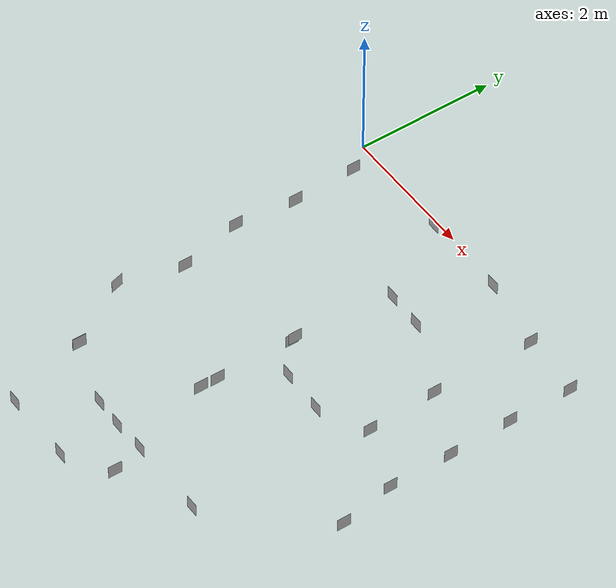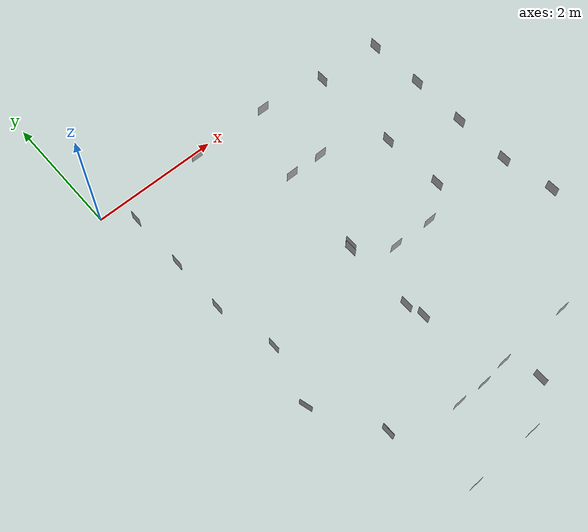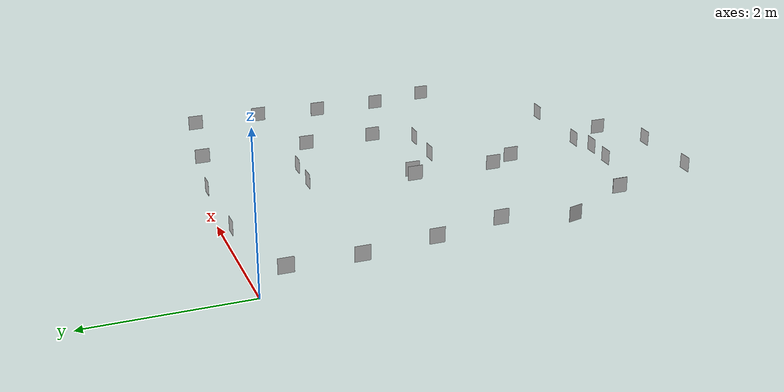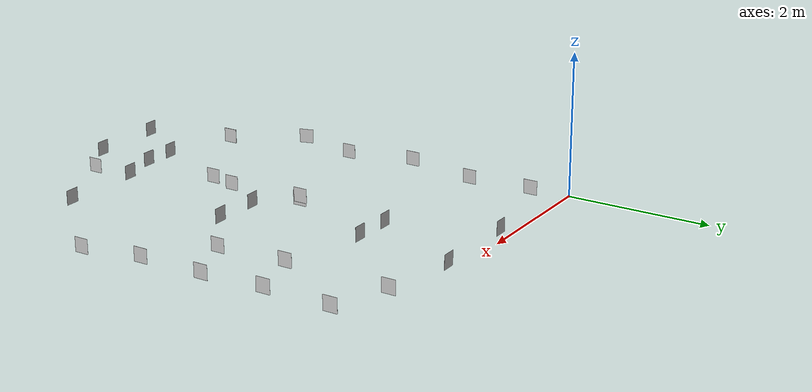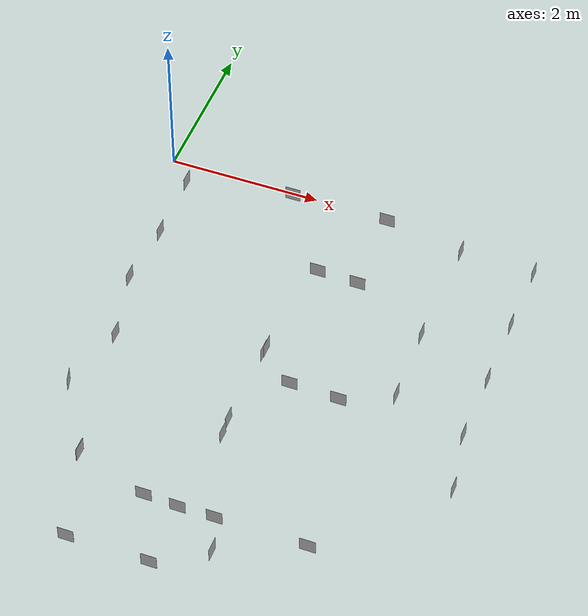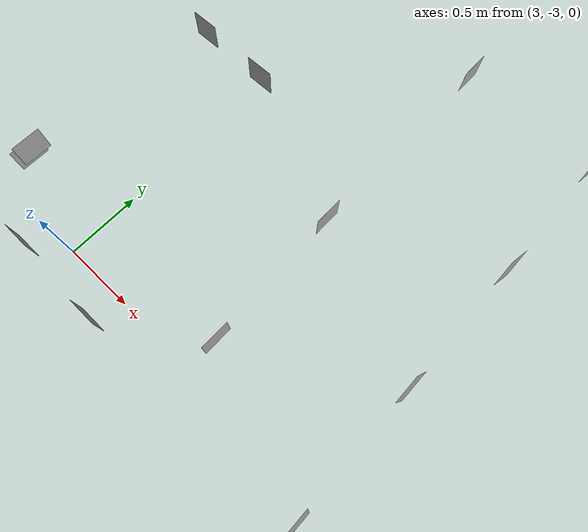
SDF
<sdf version="1.6">
 <world name="default">
  <model name="ground">
   <static>1</static>
   <link name="ground">
    <collision name="ground_coll">
     <geometry><box><size>100 100 0.01</size></box></geometry>
     <surface><contact><ode><kp>1e15</kp><kd>1e15</kd></ode></contact></surface>
    </collision>
   </link>
  </model>
  <physics type="ode">
   <real_time_update_rate>1000.0</real_time_update_rate>
   <max_step_size>0.001</max_step_size>
   <real_time_factor>1</real_time_factor>
   <ode>
    <solver>
     <type>quick</type>
     <iters>150</iters>
     <precon_iters>0</precon_iters>
     <sor>1.400000</sor>
     <use_dynamic_moi_rescaling>1</use_dynamic_moi_rescaling>
    </solver>
    <constraints>
     <cfm>0.00001</cfm>
     <erp>0.2</erp>
     <contact_max_correcting_vel>2000.000000</contact_max_correcting_vel>
     <contact_surface_layer>0.01000</contact_surface_layer>
    </constraints>
   </ode>
  </physics>
  <model name="tag0">
   <static>1</static>
   <link name="link">
    <inertial>
     <mass>10</mass>
     <inertia><ixx>1</ixx><ixy>1</ixy><ixz>1</ixz><iyy>1</iyy><iyz>1</iyz><izz>1</izz></inertia>
    </inertial>
    <visual name="visual">
     <geometry><mesh><uri>model://apriltag/tag00.dae</uri><scale>0.2 0.2 0.2</scale></mesh></geometry>
    </visual>
   </link>
   <pose frame="tank">4.054 -0.288 0.1278 0 0 3.1415</pose>
  </model>
  <model name="tag1">
   <static>1</static>
   <link name="link">
    <inertial>
     <mass>10</mass>
     <inertia><ixx>1</ixx><ixy>1</ixy><ixz>1</ixz><iyy>1</iyy><iyz>1</iyz><izz>1</izz></inertia>
    </inertial>
    <visual name="visual">
     <geometry><mesh><uri>model://apriltag/tag01.dae</uri><scale>0.2 0.2 0.2</scale></mesh></geometry>
    </visual>
   </link>
   <pose frame="tank">5.051 -1.3464 0.26 0 0 3.1415</pose>
  </model>
  <model name="tag2">
   <static>1</static>
   <link name="link">
    <inertial>
     <mass>10</mass>
     <inertia><ixx>1</ixx><ixy>1</ixy><ixz>1</ixz><iyy>1</iyy><iyz>1</iyz><izz>1</izz></inertia>
    </inertial>
    <visual name="visual">
     <geometry><mesh><uri>model://apriltag/tag02.dae</uri><scale>0.2 0.2 0.2</scale></mesh></geometry>
    </visual>
   </link>
   <pose frame="tank">4.0748 -2.769 0.1068 0 0 0</pose>
  </model>
  <model name="tag3">
   <static>1</static>
   <link name="link">
    <inertial>
     <mass>10</mass>
     <inertia><ixx>1</ixx><ixy>1</ixy><ixz>1</ixz><iyy>1</iyy><iyz>1</iyz><izz>1</izz></inertia>
    </inertial>
    <visual name="visual">
     <geometry><mesh><uri>model://apriltag/tag03.dae</uri><scale>0.2 0.2 0.2</scale></mesh></geometry>
    </visual>
   </link>
   <pose frame="tank">0.38 -1.333 0.146 0 0 0</pose>
  </model>
  <model name="tag4">
   <static>1</static>
   <link name="link">
    <inertial>
     <mass>10</mass>
     <inertia><ixx>1</ixx><ixy>1</ixy><ixz>1</ixz><iyy>1</iyy><iyz>1</iyz><izz>1</izz></inertia>
    </inertial>
    <visual name="visual">
     <geometry><mesh><uri>model://apriltag/tag04.dae</uri><scale>0.2 0.2 0.2</scale></mesh></geometry>
    </visual>
   </link>
   <pose frame="tank">0.35 -4.063 0.227 0 0 0.2744</pose>
  </model>
  <model name="tag5">
   <static>1</static>
   <link name="link">
    <inertial>
     <mass>10</mass>
     <inertia><ixx>1</ixx><ixy>1</ixy><ixz>1</ixz><iyy>1</iyy><iyz>1</iyz><izz>1</izz></inertia>
    </inertial>
    <visual name="visual">
     <geometry><mesh><uri>model://apriltag/tag05.dae</uri><scale>0.2 0.2 0.2</scale></mesh></geometry>
    </visual>
   </link>
   <pose frame="tank">0.914111 -5 0.227 0 0 0</pose>
  </model>
  <model name="tag6">
   <static>1</static>
   <link name="link">
    <inertial>
     <mass>10</mass>
     <inertia><ixx>1</ixx><ixy>1</ixy><ixz>1</ixz><iyy>1</iyy><iyz>1</iyz><izz>1</izz></inertia>
    </inertial>
    <visual name="visual">
     <geometry><mesh><uri>model://apriltag/tag06.dae</uri><scale>0.2 0.2 0.2</scale></mesh></geometry>
    </visual>
   </link>
   <pose frame="tank">2.92 -5.781 0.227 0 0 3.1415</pose>
  </model>
  <model name="tag7">
   <static>1</static>
   <link name="link">
    <inertial>
     <mass>10</mass>
     <inertia><ixx>1</ixx><ixy>1</ixy><ixz>1</ixz><iyy>1</iyy><iyz>1</iyz><izz>1</izz></inertia>
    </inertial>
    <visual name="visual">
     <geometry><mesh><uri>model://apriltag/tag07.dae</uri><scale>0.2 0.2 0.2</scale></mesh></geometry>
    </visual>
   </link>
   <pose frame="tank">1.2787 -6.189 0.227 0 0 1.5708</pose>
  </model>
  <model name="tag8">
   <static>1</static>
   <link name="link">
    <inertial>
     <mass>10</mass>
     <inertia><ixx>1</ixx><ixy>1</ixy><ixz>1</ixz><iyy>1</iyy><iyz>1</iyz><izz>1</izz></inertia>
    </inertial>
    <visual name="visual">
     <geometry><mesh><uri>model://apriltag/tag08.dae</uri><scale>0.2 0.2 0.2</scale></mesh></geometry>
    </visual>
   </link>
   <pose frame="tank">2.752 -5.31 0.177 0 0 1.5708</pose>
  </model>
  <model name="tag9">
   <static>1</static>
   <link name="link">
    <inertial>
     <mass>10</mass>
     <inertia><ixx>1</ixx><ixy>1</ixy><ixz>1</ixz><iyy>1</iyy><iyz>1</iyz><izz>1</izz></inertia>
    </inertial>
    <visual name="visual">
     <geometry><mesh><uri>model://apriltag/tag09.dae</uri><scale>0.2 0.2 0.2</scale></mesh></geometry>
    </visual>
   </link>
   <pose frame="tank">3.0518 -1.3468 0.227 0 0 -1.5708</pose>
  </model>
  <model name="tag10">
   <static>1</static>
   <link name="link">
    <inertial>
     <mass>10</mass>
     <inertia><ixx>1</ixx><ixy>1</ixy><ixz>1</ixz><iyy>1</iyy><iyz>1</iyz><izz>1</izz></inertia>
    </inertial>
    <visual name="visual">
     <geometry><mesh><uri>model://apriltag/tag10.dae</uri><scale>0.2 0.2 0.2</scale></mesh></geometry>
    </visual>
   </link>
   <pose frame="tank">2.3541 -2.7565 0.171 0 0 3.1415</pose>
  </model>
  <model name="tag11">
   <static>1</static>
   <link name="link">
    <inertial>
     <mass>10</mass>
     <inertia><ixx>1</ixx><ixy>1</ixy><ixz>1</ixz><iyy>1</iyy><iyz>1</iyz><izz>1</izz></inertia>
    </inertial>
    <visual name="visual">
     <geometry><mesh><uri>model://apriltag/tag11.dae</uri><scale>0.2 0.2 0.2</scale></mesh></geometry>
    </visual>
   </link>
   <pose frame="tank">3.4820 -3.18185 0.227 0 0 -1.5708</pose>
  </model>
  <model name="tag12">
   <static>1</static>
   <link name="link">
    <inertial>
     <mass>10</mass>
     <inertia><ixx>1</ixx><ixy>1</ixy><ixz>1</ixz><iyy>1</iyy><iyz>1</iyz><izz>1</izz></inertia>
    </inertial>
    <visual name="visual">
     <geometry><mesh><uri>model://apriltag/tag12.dae</uri><scale>0.2 0.2 0.2</scale></mesh></geometry>
    </visual>
   </link>
   <pose frame="tank">1.71401 -0.106541 0.1188 0 0 -1.57</pose>
  </model>
  <model name="tag13">
   <static>1</static>
   <link name="link">
    <inertial>
     <mass>10</mass>
     <inertia><ixx>1</ixx><ixy>1</ixy><ixz>1</ixz><iyy>1</iyy><iyz>1</iyz><izz>1</izz></inertia>
    </inertial>
    <visual name="visual">
     <geometry><mesh><uri>model://apriltag/tag13.dae</uri><scale>0.2 0.2 0.2</scale></mesh></geometry>
    </visual>
   </link>
   <pose frame="tank">5.05 -0.422 0.25 0 0 3.1415</pose>
  </model>
  <model name="tag14">
   <static>1</static>
   <link name="link">
    <inertial>
     <mass>10</mass>
     <inertia><ixx>1</ixx><ixy>1</ixy><ixz>1</ixz><iyy>1</iyy><iyz>1</iyz><izz>1</izz></inertia>
    </inertial>
    <visual name="visual">
     <geometry><mesh><uri>model://apriltag/tag14.dae</uri><scale>0.2 0.2 0.2</scale></mesh></geometry>
    </visual>
   </link>
   <pose frame="tank">2.516 -1.326 0.227 0 0 1.5708</pose>
  </model>
  <model name="tag15">
   <static>1</static>
   <link name="link">
    <inertial>
     <mass>10</mass>
     <inertia><ixx>1</ixx><ixy>1</ixy><ixz>1</ixz><iyy>1</iyy><iyz>1</iyz><izz>1</izz></inertia>
    </inertial>
    <visual name="visual">
     <geometry><mesh><uri>model://apriltag/tag15.dae</uri><scale>0.2 0.2 0.2</scale></mesh></geometry>
    </visual>
   </link>
   <pose frame="tank">0.574 -3.174 0.227 0 0 0</pose>
  </model>
  <model name="tag16">
   <static>1</static>
   <link name="link">
    <inertial>
     <mass>10</mass>
     <inertia><ixx>1</ixx><ixy>1</ixy><ixz>1</ixz><iyy>1</iyy><iyz>1</iyz><izz>1</izz></inertia>
    </inertial>
    <visual name="visual">
     <geometry><mesh><uri>model://apriltag/tag16.dae</uri><scale>0.2 0.2 0.2</scale></mesh></geometry>
    </visual>
   </link>
   <pose frame="tank">4.045 -1.772 0.125 0 0 3.1415</pose>
  </model>
  <model name="tag17">
   <static>1</static>
   <link name="link">
    <inertial>
     <mass>10</mass>
     <inertia><ixx>1</ixx><ixy>1</ixy><ixz>1</ixz><iyy>1</iyy><iyz>1</iyz><izz>1</izz></inertia>
    </inertial>
    <visual name="visual">
     <geometry><mesh><uri>model://apriltag/tag17.dae</uri><scale>0.2 0.2 0.2</scale></mesh></geometry>
    </visual>
   </link>
   <pose frame="tank">5.051 -2.25 0.227 0 0 3.1415</pose>
  </model>
  <model name="tag18">
   <static>1</static>
   <link name="link">
    <inertial>
     <mass>10</mass>
     <inertia><ixx>1</ixx><ixy>1</ixy><ixz>1</ixz><iyy>1</iyy><iyz>1</iyz><izz>1</izz></inertia>
    </inertial>
    <visual name="visual">
     <geometry><mesh><uri>model://apriltag/tag18.dae</uri><scale>0.2 0.2 0.2</scale></mesh></geometry>
    </visual>
   </link>
   <pose frame="tank">2.381 -2.7281 0.227 0 0 0</pose>
  </model>
  <model name="tag19">
   <static>1</static>
   <link name="link">
    <inertial>
     <mass>10</mass>
     <inertia><ixx>1</ixx><ixy>1</ixy><ixz>1</ixz><iyy>1</iyy><iyz>1</iyz><izz>1</izz></inertia>
    </inertial>
    <visual name="visual">
     <geometry><mesh><uri>model://apriltag/tag19.dae</uri><scale>0.2 0.2 0.2</scale></mesh></geometry>
    </visual>
   </link>
   <pose frame="tank">5.0505 -3.16 0.227 0 0 3.1415</pose>
  </model>
  <model name="tag20">
   <static>1</static>
   <link name="link">
    <inertial>
     <mass>10</mass>
     <inertia><ixx>1</ixx><ixy>1</ixy><ixz>1</ixz><iyy>1</iyy><iyz>1</iyz><izz>1</izz></inertia>
    </inertial>
    <visual name="visual">
     <geometry><mesh><uri>model://apriltag/tag20.dae</uri><scale>0.2 0.2 0.2</scale></mesh></geometry>
    </visual>
   </link>
   <pose frame="tank">0.360 -2.25 0.227 0 0 0</pose>
  </model>
  <model name="tag21">
   <static>1</static>
   <link name="link">
    <inertial>
     <mass>10</mass>
     <inertia><ixx>1</ixx><ixy>1</ixy><ixz>1</ixz><iyy>1</iyy><iyz>1</iyz><izz>1</izz></inertia>
    </inertial>
    <visual name="visual">
     <geometry><mesh><uri>model://apriltag/tag21.dae</uri><scale>0.2 0.2 0.2</scale></mesh></geometry>
    </visual>
   </link>
   <pose frame="tank">1.8755 -5.3267 0.227 0 0 1.5708</pose>
  </model>
  <model name="tag22">
   <static>1</static>
   <link name="link">
    <inertial>
     <mass>10</mass>
     <inertia><ixx>1</ixx><ixy>1</ixy><ixz>1</ixz><iyy>1</iyy><iyz>1</iyz><izz>1</izz></inertia>
    </inertial>
    <visual name="visual">
     <geometry><mesh><uri>model://apriltag/tag22.dae</uri><scale>0.2 0.2 0.2</scale></mesh></geometry>
    </visual>
   </link>
   <pose frame="tank">5.20 -3.96 0.227 0 0 3.1415</pose>
  </model>
  <model name="tag23">
   <static>1</static>
   <link name="link">
    <inertial>
     <mass>10</mass>
     <inertia><ixx>1</ixx><ixy>1</ixy><ixz>1</ixz><iyy>1</iyy><iyz>1</iyz><izz>1</izz></inertia>
    </inertial>
    <visual name="visual">
     <geometry><mesh><uri>model://apriltag/tag23.dae</uri><scale>0.2 0.2 0.2</scale></mesh></geometry>
    </visual>
   </link>
   <pose frame="tank">0.360 -0.4097 0.166 0 0 0</pose>
  </model>
  <model name="tag24">
   <static>1</static>
   <link name="link">
    <inertial>
     <mass>10</mass>
     <inertia><ixx>1</ixx><ixy>1</ixy><ixz>1</ixz><iyy>1</iyy><iyz>1</iyz><izz>1</izz></inertia>
    </inertial>
    <visual name="visual">
     <geometry><mesh><uri>model://apriltag/tag24.dae</uri><scale>0.2 0.2 0.2</scale></mesh></geometry>
    </visual>
   </link>
   <pose frame="tank">2.349 -3.88 0.166 0 0 3.1415</pose>
  </model>
  <model name="tag25">
   <static>1</static>
   <link name="link">
    <inertial>
     <mass>10</mass>
     <inertia><ixx>1</ixx><ixy>1</ixy><ixz>1</ixz><iyy>1</iyy><iyz>1</iyz><izz>1</izz></inertia>
    </inertial>
    <visual name="visual">
     <geometry><mesh><uri>model://apriltag/tag25.dae</uri><scale>0.2 0.2 0.2</scale></mesh></geometry>
    </visual>
   </link>
   <pose frame="tank">2.39 -4.156 0.227 0 0 0</pose>
  </model>
  <model name="tag26">
   <static>1</static>
   <link name="link">
    <inertial>
     <mass>10</mass>
     <inertia><ixx>1</ixx><ixy>1</ixy><ixz>1</ixz><iyy>1</iyy><iyz>1</iyz><izz>1</izz></inertia>
    </inertial>
    <visual name="visual">
     <geometry><mesh><uri>model://apriltag/tag26.dae</uri><scale>0.2 0.2 0.2</scale></mesh></geometry>
    </visual>
   </link>
   <pose frame="tank">3 -0.106541 0.1188 0 0 -1.57</pose>
  </model>
  <model name="tag27">
   <static>1</static>
   <link name="link">
    <inertial>
     <mass>10</mass>
     <inertia><ixx>1</ixx><ixy>1</ixy><ixz>1</ixz><iyy>1</iyy><iyz>1</iyz><izz>1</izz></inertia>
    </inertial>
    <visual name="visual">
     <geometry><mesh><uri>model://apriltag/tag27.dae</uri><scale>0.2 0.2 0.2</scale></mesh></geometry>
    </visual>
   </link>
   <pose frame="tank">2.848 -3.156 0.227 0 0 1.57</pose>
  </model>
  <model name="tag28">
   <static>1</static>
   <link name="link">
    <inertial>
     <mass>10</mass>
     <inertia><ixx>1</ixx><ixy>1</ixy><ixz>1</ixz><iyy>1</iyy><iyz>1</iyz><izz>1</izz></inertia>
    </inertial>
    <visual name="visual">
     <geometry><mesh><uri>model://apriltag/tag28.dae</uri><scale>0.2 0.2 0.2</scale></mesh></geometry>
    </visual>
   </link>
   <pose frame="tank">3.9 -5.31 0.177 0 0 1.5708</pose>
  </model>
  <model name="tag29">
   <static>1</static>
   <link name="link">
    <inertial>
     <mass>10</mass>
     <inertia><ixx>1</ixx><ixy>1</ixy><ixz>1</ixz><iyy>1</iyy><iyz>1</iyz><izz>1</izz></inertia>
    </inertial>
    <visual name="visual">
     <geometry><mesh><uri>model://apriltag/tag29.dae</uri><scale>0.2 0.2 0.2</scale></mesh></geometry>
    </visual>
   </link>
   <pose frame="tank">0.92 -5 0.227 0 0 0</pose>
  </model>
  <model name="tag30">
   <static>1</static>
   <link name="link">
    <inertial>
     <mass>10</mass>
     <inertia><ixx>1</ixx><ixy>1</ixy><ixz>1</ixz><iyy>1</iyy><iyz>1</iyz><izz>1</izz></inertia>
    </inertial>
    <visual name="visual">
     <geometry><mesh><uri>model://apriltag/tag30.dae</uri><scale>0.2 0.2 0.2</scale></mesh></geometry>
    </visual>
   </link>
   <pose frame="tank">2.31 -6.189 0.227 0 0 1.5708</pose>
  </model>
  <model name="tag31">
   <static>1</static>
   <link name="link">
    <inertial>
     <mass>10</mass>
     <inertia><ixx>1</ixx><ixy>1</ixy><ixz>1</ixz><iyy>1</iyy><iyz>1</iyz><izz>1</izz></inertia>
    </inertial>
    <visual name="visual">
     <geometry><mesh><uri>model://apriltag/tag31.dae</uri><scale>0.2 0.2 0.2</scale></mesh></geometry>
    </visual>
   </link>
   <pose frame="tank">2.31 -5.35 0.227 0 0 -1.5708</pose>
  </model>
 </world>
</sdf>
